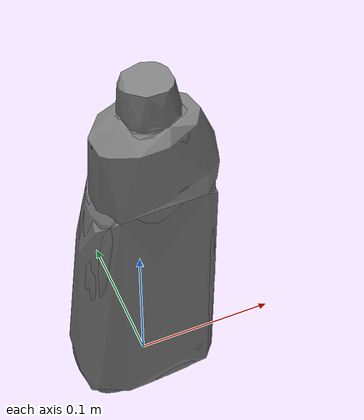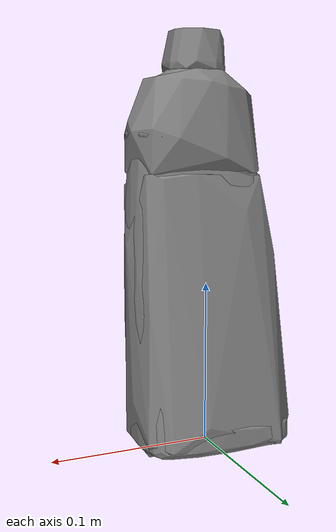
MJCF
<mujoco model="bleach_cleanser">
  <asset>
    <mesh file="../../meshes/ycb/bleach_cleanser/simple_mesh.stl" name="bleach_cleanser_mesh" scale="1 1 1"/>
    <mesh file="../../meshes/ycb/bleach_cleanser/bleach_cleanser_hull_1.stl" name="bleach_cleanser_hull_mesh_1" scale="1 1 1"/>
    <mesh file="../../meshes/ycb/bleach_cleanser/bleach_cleanser_hull_2.stl" name="bleach_cleanser_hull_mesh_2" scale="1 1 1"/>
    <mesh file="../../meshes/ycb/bleach_cleanser/bleach_cleanser_hull_3.stl" name="bleach_cleanser_hull_mesh_3" scale="1 1 1"/>
  </asset>
  <worldbody>
    <body>
      <body name="object">
        <geom pos="0 0 0" mesh="bleach_cleanser_mesh" type="mesh" contype="0" conaffinity="0" group="1"/>
        <geom pos="0 0 0" mesh="bleach_cleanser_hull_mesh_1" type="mesh" margin="0.001" solimp="0.998 0.998 0.001" solref="0.001 1" density="200" friction="0.95 0.3 0.1" group="0" condim="4"/>
        <geom pos="0 0 0" mesh="bleach_cleanser_hull_mesh_2" type="mesh" margin="0.001" solimp="0.998 0.998 0.001" solref="0.001 1" density="200" friction="0.95 0.3 0.1" group="0" condim="4"/>
        <geom pos="0 0 0" mesh="bleach_cleanser_hull_mesh_3" type="mesh" margin="0.001" solimp="0.998 0.998 0.001" solref="0.001 1" density="200" friction="0.95 0.3 0.1" group="0" condim="4"/>
      </body>
      <site rgba="0 0 0 0" size="0.005" pos="0 0 -0.001" name="bottom_site"/>
      <site rgba="0 0 0 0" size="0.005" pos="0 0 0.02" name="top_site"/>
      <site rgba="0 0 0 0" size="0.005" pos="0.0375 0.02 0" name="horizontal_radius_site"/>
    </body>
  </worldbody>
</mujoco>
